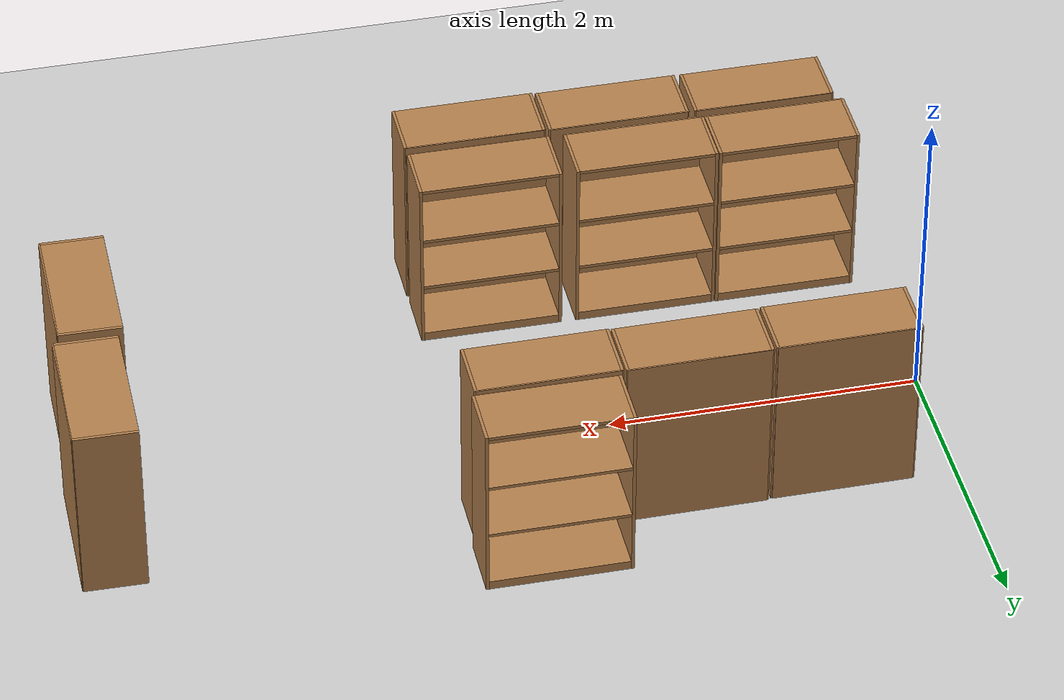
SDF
<sdf version="1.7">
 <world name="default">
  <model name="ground_plane">
   <static>1</static>
   <link name="link">
    <collision name="collision">
     <geometry><plane><normal>0 0 1</normal><size>100 100</size></plane></geometry>
     <surface>
      <contact><collide_bitmask>65535</collide_bitmask></contact>
      <friction><ode><mu>100</mu><mu2>50</mu2></ode></friction>
     </surface>
    </collision>
    <visual name="visual">
     <cast_shadows>0</cast_shadows>
     <geometry><plane><normal>0 0 1</normal><size>100 100</size></plane></geometry>
     <material>
      <script><uri>file://media/materials/scripts/gazebo.material</uri><name>Gazebo/Grey</name></script>
     </material>
    </visual>
   </link>
  </model>
  <model name="bookshelf_2">
   <static>1</static>
   <link name="link">
    <inertial><mass>1</mass></inertial>
    <collision name="back">
     <pose>0 0.005 0.6 0 -0 0</pose>
     <geometry><box><size>0.9 0.01 1.2</size></box></geometry>
    </collision>
    <visual name="visual1">
     <pose>0 0.005 0.6 0 -0 0</pose>
     <geometry><box><size>0.9 0.01 1.2</size></box></geometry>
     <material>
      <script><uri>file://media/materials/scripts/gazebo.material</uri><name>Gazebo/Wood</name></script>
     </material>
    </visual>
    <collision name="left_side">
     <pose>0.45 -0.195 0.6 0 -0 0</pose>
     <geometry><box><size>0.02 0.4 1.2</size></box></geometry>
    </collision>
    <visual name="visual2">
     <pose>0.45 -0.195 0.6 0 -0 0</pose>
     <geometry><box><size>0.02 0.4 1.2</size></box></geometry>
     <material>
      <script><uri>file://media/materials/scripts/gazebo.material</uri><name>Gazebo/Wood</name></script>
     </material>
    </visual>
    <collision name="right_side">
     <pose>-0.45 -0.195 0.6 0 -0 0</pose>
     <geometry><box><size>0.02 0.4 1.2</size></box></geometry>
    </collision>
    <visual name="visual3">
     <pose>-0.45 -0.195 0.6 0 -0 0</pose>
     <geometry><box><size>0.02 0.4 1.2</size></box></geometry>
     <material>
      <script><uri>file://media/materials/scripts/gazebo.material</uri><name>Gazebo/Wood</name></script>
     </material>
    </visual>
    <collision name="bottom">
     <pose>0 -0.195 0.03 0 -0 0</pose>
     <geometry><box><size>0.88 0.4 0.06</size></box></geometry>
    </collision>
    <visual name="visual4">
     <pose>0 -0.195 0.03 0 -0 0</pose>
     <geometry><box><size>0.88 0.4 0.06</size></box></geometry>
     <material>
      <script><uri>file://media/materials/scripts/gazebo.material</uri><name>Gazebo/Wood</name></script>
     </material>
    </visual>
    <collision name="top">
     <pose>0 -0.195 1.19 0 -0 0</pose>
     <geometry><box><size>0.88 0.4 0.02</size></box></geometry>
    </collision>
    <visual name="visual5">
     <pose>0 -0.195 1.19 0 -0 0</pose>
     <geometry><box><size>0.88 0.4 0.02</size></box></geometry>
     <material>
      <script><uri>file://media/materials/scripts/gazebo.material</uri><name>Gazebo/Wood</name></script>
     </material>
    </visual>
    <collision name="low_shelf">
     <pose>0 -0.195 0.43 0 -0 0</pose>
     <geometry><box><size>0.88 0.4 0.02</size></box></geometry>
    </collision>
    <visual name="visual6">
     <pose>0 -0.195 0.43 0 -0 0</pose>
     <geometry><box><size>0.88 0.4 0.02</size></box></geometry>
     <material>
      <script><uri>file://media/materials/scripts/gazebo.material</uri><name>Gazebo/Wood</name></script>
     </material>
    </visual>
    <collision name="high_shelf">
     <pose>0 -0.195 0.8 0 -0 0</pose>
     <geometry><box><size>0.88 0.4 0.02</size></box></geometry>
    </collision>
    <visual name="visual7">
     <pose>0 -0.195 0.8 0 -0 0</pose>
     <geometry><box><size>0.88 0.4 0.02</size></box></geometry>
     <material>
      <script><uri>file://media/materials/scripts/gazebo.material</uri><name>Gazebo/Wood</name></script>
     </material>
    </visual>
   </link>
   <pose>2.61434 0.940511 0 0 -0 3.13622</pose>
  </model>
  <model name="bookshelf_clone">
   <static>1</static>
   <link name="link">
    <inertial><mass>1</mass></inertial>
    <collision name="back">
     <pose>0 0.005 0.6 0 -0 0</pose>
     <geometry><box><size>0.9 0.01 1.2</size></box></geometry>
    </collision>
    <visual name="visual1">
     <pose>0 0.005 0.6 0 -0 0</pose>
     <geometry><box><size>0.9 0.01 1.2</size></box></geometry>
     <material>
      <script><uri>file://media/materials/scripts/gazebo.material</uri><name>Gazebo/Wood</name></script>
     </material>
    </visual>
    <collision name="left_side">
     <pose>0.45 -0.195 0.6 0 -0 0</pose>
     <geometry><box><size>0.02 0.4 1.2</size></box></geometry>
    </collision>
    <visual name="visual2">
     <pose>0.45 -0.195 0.6 0 -0 0</pose>
     <geometry><box><size>0.02 0.4 1.2</size></box></geometry>
     <material>
      <script><uri>file://media/materials/scripts/gazebo.material</uri><name>Gazebo/Wood</name></script>
     </material>
    </visual>
    <collision name="right_side">
     <pose>-0.45 -0.195 0.6 0 -0 0</pose>
     <geometry><box><size>0.02 0.4 1.2</size></box></geometry>
    </collision>
    <visual name="visual3">
     <pose>-0.45 -0.195 0.6 0 -0 0</pose>
     <geometry><box><size>0.02 0.4 1.2</size></box></geometry>
     <material>
      <script><uri>file://media/materials/scripts/gazebo.material</uri><name>Gazebo/Wood</name></script>
     </material>
    </visual>
    <collision name="bottom">
     <pose>0 -0.195 0.03 0 -0 0</pose>
     <geometry><box><size>0.88 0.4 0.06</size></box></geometry>
    </collision>
    <visual name="visual4">
     <pose>0 -0.195 0.03 0 -0 0</pose>
     <geometry><box><size>0.88 0.4 0.06</size></box></geometry>
     <material>
      <script><uri>file://media/materials/scripts/gazebo.material</uri><name>Gazebo/Wood</name></script>
     </material>
    </visual>
    <collision name="top">
     <pose>0 -0.195 1.19 0 -0 0</pose>
     <geometry><box><size>0.88 0.4 0.02</size></box></geometry>
    </collision>
    <visual name="visual5">
     <pose>0 -0.195 1.19 0 -0 0</pose>
     <geometry><box><size>0.88 0.4 0.02</size></box></geometry>
     <material>
      <script><uri>file://media/materials/scripts/gazebo.material</uri><name>Gazebo/Wood</name></script>
     </material>
    </visual>
    <collision name="low_shelf">
     <pose>0 -0.195 0.43 0 -0 0</pose>
     <geometry><box><size>0.88 0.4 0.02</size></box></geometry>
    </collision>
    <visual name="visual6">
     <pose>0 -0.195 0.43 0 -0 0</pose>
     <geometry><box><size>0.88 0.4 0.02</size></box></geometry>
     <material>
      <script><uri>file://media/materials/scripts/gazebo.material</uri><name>Gazebo/Wood</name></script>
     </material>
    </visual>
    <collision name="high_shelf">
     <pose>0 -0.195 0.8 0 -0 0</pose>
     <geometry><box><size>0.88 0.4 0.02</size></box></geometry>
    </collision>
    <visual name="visual7">
     <pose>0 -0.195 0.8 0 -0 0</pose>
     <geometry><box><size>0.88 0.4 0.02</size></box></geometry>
     <material>
      <script><uri>file://media/materials/scripts/gazebo.material</uri><name>Gazebo/Wood</name></script>
     </material>
    </visual>
   </link>
   <pose>2.59058 0.88967 0 0 -0 0</pose>
  </model>
  <model name="bookshelf_clone_clone">
   <static>1</static>
   <link name="link">
    <inertial><mass>1</mass></inertial>
    <collision name="back">
     <pose>0 0.005 0.6 0 -0 0</pose>
     <geometry><box><size>0.9 0.01 1.2</size></box></geometry>
    </collision>
    <visual name="visual1">
     <pose>0 0.005 0.6 0 -0 0</pose>
     <geometry><box><size>0.9 0.01 1.2</size></box></geometry>
     <material>
      <script><uri>file://media/materials/scripts/gazebo.material</uri><name>Gazebo/Wood</name></script>
     </material>
    </visual>
    <collision name="left_side">
     <pose>0.45 -0.195 0.6 0 -0 0</pose>
     <geometry><box><size>0.02 0.4 1.2</size></box></geometry>
    </collision>
    <visual name="visual2">
     <pose>0.45 -0.195 0.6 0 -0 0</pose>
     <geometry><box><size>0.02 0.4 1.2</size></box></geometry>
     <material>
      <script><uri>file://media/materials/scripts/gazebo.material</uri><name>Gazebo/Wood</name></script>
     </material>
    </visual>
    <collision name="right_side">
     <pose>-0.45 -0.195 0.6 0 -0 0</pose>
     <geometry><box><size>0.02 0.4 1.2</size></box></geometry>
    </collision>
    <visual name="visual3">
     <pose>-0.45 -0.195 0.6 0 -0 0</pose>
     <geometry><box><size>0.02 0.4 1.2</size></box></geometry>
     <material>
      <script><uri>file://media/materials/scripts/gazebo.material</uri><name>Gazebo/Wood</name></script>
     </material>
    </visual>
    <collision name="bottom">
     <pose>0 -0.195 0.03 0 -0 0</pose>
     <geometry><box><size>0.88 0.4 0.06</size></box></geometry>
    </collision>
    <visual name="visual4">
     <pose>0 -0.195 0.03 0 -0 0</pose>
     <geometry><box><size>0.88 0.4 0.06</size></box></geometry>
     <material>
      <script><uri>file://media/materials/scripts/gazebo.material</uri><name>Gazebo/Wood</name></script>
     </material>
    </visual>
    <collision name="top">
     <pose>0 -0.195 1.19 0 -0 0</pose>
     <geometry><box><size>0.88 0.4 0.02</size></box></geometry>
    </collision>
    <visual name="visual5">
     <pose>0 -0.195 1.19 0 -0 0</pose>
     <geometry><box><size>0.88 0.4 0.02</size></box></geometry>
     <material>
      <script><uri>file://media/materials/scripts/gazebo.material</uri><name>Gazebo/Wood</name></script>
     </material>
    </visual>
    <collision name="low_shelf">
     <pose>0 -0.195 0.43 0 -0 0</pose>
     <geometry><box><size>0.88 0.4 0.02</size></box></geometry>
    </collision>
    <visual name="visual6">
     <pose>0 -0.195 0.43 0 -0 0</pose>
     <geometry><box><size>0.88 0.4 0.02</size></box></geometry>
     <material>
      <script><uri>file://media/materials/scripts/gazebo.material</uri><name>Gazebo/Wood</name></script>
     </material>
    </visual>
    <collision name="high_shelf">
     <pose>0 -0.195 0.8 0 -0 0</pose>
     <geometry><box><size>0.88 0.4 0.02</size></box></geometry>
    </collision>
    <visual name="visual7">
     <pose>0 -0.195 0.8 0 -0 0</pose>
     <geometry><box><size>0.88 0.4 0.02</size></box></geometry>
     <material>
      <script><uri>file://media/materials/scripts/gazebo.material</uri><name>Gazebo/Wood</name></script>
     </material>
    </visual>
   </link>
   <pose>1.6608 0.896396 0 0 -0 0</pose>
  </model>
  <model name="bookshelf_clone_clone_clone">
   <static>1</static>
   <link name="link">
    <inertial><mass>1</mass></inertial>
    <collision name="back">
     <pose>0 0.005 0.6 0 -0 0</pose>
     <geometry><box><size>0.9 0.01 1.2</size></box></geometry>
    </collision>
    <visual name="visual1">
     <pose>0 0.005 0.6 0 -0 0</pose>
     <geometry><box><size>0.9 0.01 1.2</size></box></geometry>
     <material>
      <script><uri>file://media/materials/scripts/gazebo.material</uri><name>Gazebo/Wood</name></script>
     </material>
    </visual>
    <collision name="left_side">
     <pose>0.45 -0.195 0.6 0 -0 0</pose>
     <geometry><box><size>0.02 0.4 1.2</size></box></geometry>
    </collision>
    <visual name="visual2">
     <pose>0.45 -0.195 0.6 0 -0 0</pose>
     <geometry><box><size>0.02 0.4 1.2</size></box></geometry>
     <material>
      <script><uri>file://media/materials/scripts/gazebo.material</uri><name>Gazebo/Wood</name></script>
     </material>
    </visual>
    <collision name="right_side">
     <pose>-0.45 -0.195 0.6 0 -0 0</pose>
     <geometry><box><size>0.02 0.4 1.2</size></box></geometry>
    </collision>
    <visual name="visual3">
     <pose>-0.45 -0.195 0.6 0 -0 0</pose>
     <geometry><box><size>0.02 0.4 1.2</size></box></geometry>
     <material>
      <script><uri>file://media/materials/scripts/gazebo.material</uri><name>Gazebo/Wood</name></script>
     </material>
    </visual>
    <collision name="bottom">
     <pose>0 -0.195 0.03 0 -0 0</pose>
     <geometry><box><size>0.88 0.4 0.06</size></box></geometry>
    </collision>
    <visual name="visual4">
     <pose>0 -0.195 0.03 0 -0 0</pose>
     <geometry><box><size>0.88 0.4 0.06</size></box></geometry>
     <material>
      <script><uri>file://media/materials/scripts/gazebo.material</uri><name>Gazebo/Wood</name></script>
     </material>
    </visual>
    <collision name="top">
     <pose>0 -0.195 1.19 0 -0 0</pose>
     <geometry><box><size>0.88 0.4 0.02</size></box></geometry>
    </collision>
    <visual name="visual5">
     <pose>0 -0.195 1.19 0 -0 0</pose>
     <geometry><box><size>0.88 0.4 0.02</size></box></geometry>
     <material>
      <script><uri>file://media/materials/scripts/gazebo.material</uri><name>Gazebo/Wood</name></script>
     </material>
    </visual>
    <collision name="low_shelf">
     <pose>0 -0.195 0.43 0 -0 0</pose>
     <geometry><box><size>0.88 0.4 0.02</size></box></geometry>
    </collision>
    <visual name="visual6">
     <pose>0 -0.195 0.43 0 -0 0</pose>
     <geometry><box><size>0.88 0.4 0.02</size></box></geometry>
     <material>
      <script><uri>file://media/materials/scripts/gazebo.material</uri><name>Gazebo/Wood</name></script>
     </material>
    </visual>
    <collision name="high_shelf">
     <pose>0 -0.195 0.8 0 -0 0</pose>
     <geometry><box><size>0.88 0.4 0.02</size></box></geometry>
    </collision>
    <visual name="visual7">
     <pose>0 -0.195 0.8 0 -0 0</pose>
     <geometry><box><size>0.88 0.4 0.02</size></box></geometry>
     <material>
      <script><uri>file://media/materials/scripts/gazebo.material</uri><name>Gazebo/Wood</name></script>
     </material>
    </visual>
   </link>
   <pose>0.72663 0.888413 0 0 -0 0</pose>
  </model>
  <model name="bookshelf_2_clone_1">
   <static>1</static>
   <link name="link">
    <inertial><mass>1</mass></inertial>
    <collision name="back">
     <pose>0 0.005 0.6 0 -0 0</pose>
     <geometry><box><size>0.9 0.01 1.2</size></box></geometry>
    </collision>
    <visual name="visual1">
     <pose>0 0.005 0.6 0 -0 0</pose>
     <geometry><box><size>0.9 0.01 1.2</size></box></geometry>
     <material>
      <script><uri>file://media/materials/scripts/gazebo.material</uri><name>Gazebo/Wood</name></script>
     </material>
    </visual>
    <collision name="left_side">
     <pose>0.45 -0.195 0.6 0 -0 0</pose>
     <geometry><box><size>0.02 0.4 1.2</size></box></geometry>
    </collision>
    <visual name="visual2">
     <pose>0.45 -0.195 0.6 0 -0 0</pose>
     <geometry><box><size>0.02 0.4 1.2</size></box></geometry>
     <material>
      <script><uri>file://media/materials/scripts/gazebo.material</uri><name>Gazebo/Wood</name></script>
     </material>
    </visual>
    <collision name="right_side">
     <pose>-0.45 -0.195 0.6 0 -0 0</pose>
     <geometry><box><size>0.02 0.4 1.2</size></box></geometry>
    </collision>
    <visual name="visual3">
     <pose>-0.45 -0.195 0.6 0 -0 0</pose>
     <geometry><box><size>0.02 0.4 1.2</size></box></geometry>
     <material>
      <script><uri>file://media/materials/scripts/gazebo.material</uri><name>Gazebo/Wood</name></script>
     </material>
    </visual>
    <collision name="bottom">
     <pose>0 -0.195 0.03 0 -0 0</pose>
     <geometry><box><size>0.88 0.4 0.06</size></box></geometry>
    </collision>
    <visual name="visual4">
     <pose>0 -0.195 0.03 0 -0 0</pose>
     <geometry><box><size>0.88 0.4 0.06</size></box></geometry>
     <material>
      <script><uri>file://media/materials/scripts/gazebo.material</uri><name>Gazebo/Wood</name></script>
     </material>
    </visual>
    <collision name="top">
     <pose>0 -0.195 1.19 0 -0 0</pose>
     <geometry><box><size>0.88 0.4 0.02</size></box></geometry>
    </collision>
    <visual name="visual5">
     <pose>0 -0.195 1.19 0 -0 0</pose>
     <geometry><box><size>0.88 0.4 0.02</size></box></geometry>
     <material>
      <script><uri>file://media/materials/scripts/gazebo.material</uri><name>Gazebo/Wood</name></script>
     </material>
    </visual>
    <collision name="low_shelf">
     <pose>0 -0.195 0.43 0 -0 0</pose>
     <geometry><box><size>0.88 0.4 0.02</size></box></geometry>
    </collision>
    <visual name="visual6">
     <pose>0 -0.195 0.43 0 -0 0</pose>
     <geometry><box><size>0.88 0.4 0.02</size></box></geometry>
     <material>
      <script><uri>file://media/materials/scripts/gazebo.material</uri><name>Gazebo/Wood</name></script>
     </material>
    </visual>
    <collision name="high_shelf">
     <pose>0 -0.195 0.8 0 -0 0</pose>
     <geometry><box><size>0.88 0.4 0.02</size></box></geometry>
    </collision>
    <visual name="visual7">
     <pose>0 -0.195 0.8 0 -0 0</pose>
     <geometry><box><size>0.88 0.4 0.02</size></box></geometry>
     <material>
      <script><uri>file://media/materials/scripts/gazebo.material</uri><name>Gazebo/Wood</name></script>
     </material>
    </visual>
   </link>
   <pose>2.51878 -1.46416 0 0 -0 3.13622</pose>
  </model>
  <model name="bookshelf_2_clone_2">
   <static>1</static>
   <link name="link">
    <inertial><mass>1</mass></inertial>
    <collision name="back">
     <pose>0 0.005 0.6 0 -0 0</pose>
     <geometry><box><size>0.9 0.01 1.2</size></box></geometry>
    </collision>
    <visual name="visual1">
     <pose>0 0.005 0.6 0 -0 0</pose>
     <geometry><box><size>0.9 0.01 1.2</size></box></geometry>
     <material>
      <script><uri>file://media/materials/scripts/gazebo.material</uri><name>Gazebo/Wood</name></script>
     </material>
    </visual>
    <collision name="left_side">
     <pose>0.45 -0.195 0.6 0 -0 0</pose>
     <geometry><box><size>0.02 0.4 1.2</size></box></geometry>
    </collision>
    <visual name="visual2">
     <pose>0.45 -0.195 0.6 0 -0 0</pose>
     <geometry><box><size>0.02 0.4 1.2</size></box></geometry>
     <material>
      <script><uri>file://media/materials/scripts/gazebo.material</uri><name>Gazebo/Wood</name></script>
     </material>
    </visual>
    <collision name="right_side">
     <pose>-0.45 -0.195 0.6 0 -0 0</pose>
     <geometry><box><size>0.02 0.4 1.2</size></box></geometry>
    </collision>
    <visual name="visual3">
     <pose>-0.45 -0.195 0.6 0 -0 0</pose>
     <geometry><box><size>0.02 0.4 1.2</size></box></geometry>
     <material>
      <script><uri>file://media/materials/scripts/gazebo.material</uri><name>Gazebo/Wood</name></script>
     </material>
    </visual>
    <collision name="bottom">
     <pose>0 -0.195 0.03 0 -0 0</pose>
     <geometry><box><size>0.88 0.4 0.06</size></box></geometry>
    </collision>
    <visual name="visual4">
     <pose>0 -0.195 0.03 0 -0 0</pose>
     <geometry><box><size>0.88 0.4 0.06</size></box></geometry>
     <material>
      <script><uri>file://media/materials/scripts/gazebo.material</uri><name>Gazebo/Wood</name></script>
     </material>
    </visual>
    <collision name="top">
     <pose>0 -0.195 1.19 0 -0 0</pose>
     <geometry><box><size>0.88 0.4 0.02</size></box></geometry>
    </collision>
    <visual name="visual5">
     <pose>0 -0.195 1.19 0 -0 0</pose>
     <geometry><box><size>0.88 0.4 0.02</size></box></geometry>
     <material>
      <script><uri>file://media/materials/scripts/gazebo.material</uri><name>Gazebo/Wood</name></script>
     </material>
    </visual>
    <collision name="low_shelf">
     <pose>0 -0.195 0.43 0 -0 0</pose>
     <geometry><box><size>0.88 0.4 0.02</size></box></geometry>
    </collision>
    <visual name="visual6">
     <pose>0 -0.195 0.43 0 -0 0</pose>
     <geometry><box><size>0.88 0.4 0.02</size></box></geometry>
     <material>
      <script><uri>file://media/materials/scripts/gazebo.material</uri><name>Gazebo/Wood</name></script>
     </material>
    </visual>
    <collision name="high_shelf">
     <pose>0 -0.195 0.8 0 -0 0</pose>
     <geometry><box><size>0.88 0.4 0.02</size></box></geometry>
    </collision>
    <visual name="visual7">
     <pose>0 -0.195 0.8 0 -0 0</pose>
     <geometry><box><size>0.88 0.4 0.02</size></box></geometry>
     <material>
      <script><uri>file://media/materials/scripts/gazebo.material</uri><name>Gazebo/Wood</name></script>
     </material>
    </visual>
   </link>
   <pose>1.50781 -1.45641 0 0 -0 3.13622</pose>
  </model>
  <model name="bookshelf_2_clone_3">
   <static>1</static>
   <link name="link">
    <inertial><mass>1</mass></inertial>
    <collision name="back">
     <pose>0 0.005 0.6 0 -0 0</pose>
     <geometry><box><size>0.9 0.01 1.2</size></box></geometry>
    </collision>
    <visual name="visual1">
     <pose>0 0.005 0.6 0 -0 0</pose>
     <geometry><box><size>0.9 0.01 1.2</size></box></geometry>
     <material>
      <script><uri>file://media/materials/scripts/gazebo.material</uri><name>Gazebo/Wood</name></script>
     </material>
    </visual>
    <collision name="left_side">
     <pose>0.45 -0.195 0.6 0 -0 0</pose>
     <geometry><box><size>0.02 0.4 1.2</size></box></geometry>
    </collision>
    <visual name="visual2">
     <pose>0.45 -0.195 0.6 0 -0 0</pose>
     <geometry><box><size>0.02 0.4 1.2</size></box></geometry>
     <material>
      <script><uri>file://media/materials/scripts/gazebo.material</uri><name>Gazebo/Wood</name></script>
     </material>
    </visual>
    <collision name="right_side">
     <pose>-0.45 -0.195 0.6 0 -0 0</pose>
     <geometry><box><size>0.02 0.4 1.2</size></box></geometry>
    </collision>
    <visual name="visual3">
     <pose>-0.45 -0.195 0.6 0 -0 0</pose>
     <geometry><box><size>0.02 0.4 1.2</size></box></geometry>
     <material>
      <script><uri>file://media/materials/scripts/gazebo.material</uri><name>Gazebo/Wood</name></script>
     </material>
    </visual>
    <collision name="bottom">
     <pose>0 -0.195 0.03 0 -0 0</pose>
     <geometry><box><size>0.88 0.4 0.06</size></box></geometry>
    </collision>
    <visual name="visual4">
     <pose>0 -0.195 0.03 0 -0 0</pose>
     <geometry><box><size>0.88 0.4 0.06</size></box></geometry>
     <material>
      <script><uri>file://media/materials/scripts/gazebo.material</uri><name>Gazebo/Wood</name></script>
     </material>
    </visual>
    <collision name="top">
     <pose>0 -0.195 1.19 0 -0 0</pose>
     <geometry><box><size>0.88 0.4 0.02</size></box></geometry>
    </collision>
    <visual name="visual5">
     <pose>0 -0.195 1.19 0 -0 0</pose>
     <geometry><box><size>0.88 0.4 0.02</size></box></geometry>
     <material>
      <script><uri>file://media/materials/scripts/gazebo.material</uri><name>Gazebo/Wood</name></script>
     </material>
    </visual>
    <collision name="low_shelf">
     <pose>0 -0.195 0.43 0 -0 0</pose>
     <geometry><box><size>0.88 0.4 0.02</size></box></geometry>
    </collision>
    <visual name="visual6">
     <pose>0 -0.195 0.43 0 -0 0</pose>
     <geometry><box><size>0.88 0.4 0.02</size></box></geometry>
     <material>
      <script><uri>file://media/materials/scripts/gazebo.material</uri><name>Gazebo/Wood</name></script>
     </material>
    </visual>
    <collision name="high_shelf">
     <pose>0 -0.195 0.8 0 -0 0</pose>
     <geometry><box><size>0.88 0.4 0.02</size></box></geometry>
    </collision>
    <visual name="visual7">
     <pose>0 -0.195 0.8 0 -0 0</pose>
     <geometry><box><size>0.88 0.4 0.02</size></box></geometry>
     <material>
      <script><uri>file://media/materials/scripts/gazebo.material</uri><name>Gazebo/Wood</name></script>
     </material>
    </visual>
   </link>
   <pose>0.583819 -1.44906 0 0 -0 3.13622</pose>
  </model>
  <model name="bookshelf_clone_clone_0">
   <static>1</static>
   <link name="link">
    <inertial><mass>1</mass></inertial>
    <collision name="back">
     <pose>0 0.005 0.6 0 -0 0</pose>
     <geometry><box><size>0.9 0.01 1.2</size></box></geometry>
    </collision>
    <visual name="visual1">
     <pose>0 0.005 0.6 0 -0 0</pose>
     <geometry><box><size>0.9 0.01 1.2</size></box></geometry>
     <material>
      <script><uri>file://media/materials/scripts/gazebo.material</uri><name>Gazebo/Wood</name></script>
     </material>
    </visual>
    <collision name="left_side">
     <pose>0.45 -0.195 0.6 0 -0 0</pose>
     <geometry><box><size>0.02 0.4 1.2</size></box></geometry>
    </collision>
    <visual name="visual2">
     <pose>0.45 -0.195 0.6 0 -0 0</pose>
     <geometry><box><size>0.02 0.4 1.2</size></box></geometry>
     <material>
      <script><uri>file://media/materials/scripts/gazebo.material</uri><name>Gazebo/Wood</name></script>
     </material>
    </visual>
    <collision name="right_side">
     <pose>-0.45 -0.195 0.6 0 -0 0</pose>
     <geometry><box><size>0.02 0.4 1.2</size></box></geometry>
    </collision>
    <visual name="visual3">
     <pose>-0.45 -0.195 0.6 0 -0 0</pose>
     <geometry><box><size>0.02 0.4 1.2</size></box></geometry>
     <material>
      <script><uri>file://media/materials/scripts/gazebo.material</uri><name>Gazebo/Wood</name></script>
     </material>
    </visual>
    <collision name="bottom">
     <pose>0 -0.195 0.03 0 -0 0</pose>
     <geometry><box><size>0.88 0.4 0.06</size></box></geometry>
    </collision>
    <visual name="visual4">
     <pose>0 -0.195 0.03 0 -0 0</pose>
     <geometry><box><size>0.88 0.4 0.06</size></box></geometry>
     <material>
      <script><uri>file://media/materials/scripts/gazebo.material</uri><name>Gazebo/Wood</name></script>
     </material>
    </visual>
    <collision name="top">
     <pose>0 -0.195 1.19 0 -0 0</pose>
     <geometry><box><size>0.88 0.4 0.02</size></box></geometry>
    </collision>
    <visual name="visual5">
     <pose>0 -0.195 1.19 0 -0 0</pose>
     <geometry><box><size>0.88 0.4 0.02</size></box></geometry>
     <material>
      <script><uri>file://media/materials/scripts/gazebo.material</uri><name>Gazebo/Wood</name></script>
     </material>
    </visual>
    <collision name="low_shelf">
     <pose>0 -0.195 0.43 0 -0 0</pose>
     <geometry><box><size>0.88 0.4 0.02</size></box></geometry>
    </collision>
    <visual name="visual6">
     <pose>0 -0.195 0.43 0 -0 0</pose>
     <geometry><box><size>0.88 0.4 0.02</size></box></geometry>
     <material>
      <script><uri>file://media/materials/scripts/gazebo.material</uri><name>Gazebo/Wood</name></script>
     </material>
    </visual>
    <collision name="high_shelf">
     <pose>0 -0.195 0.8 0 -0 0</pose>
     <geometry><box><size>0.88 0.4 0.02</size></box></geometry>
    </collision>
    <visual name="visual7">
     <pose>0 -0.195 0.8 0 -0 0</pose>
     <geometry><box><size>0.88 0.4 0.02</size></box></geometry>
     <material>
      <script><uri>file://media/materials/scripts/gazebo.material</uri><name>Gazebo/Wood</name></script>
     </material>
    </visual>
   </link>
   <pose>2.52478 -1.54537 0 0 -0 0</pose>
  </model>
  <model name="bookshelf_clone_clone_clone_0">
   <static>1</static>
   <link name="link">
    <inertial><mass>1</mass></inertial>
    <collision name="back">
     <pose>0 0.005 0.6 0 -0 0</pose>
     <geometry><box><size>0.9 0.01 1.2</size></box></geometry>
    </collision>
    <visual name="visual1">
     <pose>0 0.005 0.6 0 -0 0</pose>
     <geometry><box><size>0.9 0.01 1.2</size></box></geometry>
     <material>
      <script><uri>file://media/materials/scripts/gazebo.material</uri><name>Gazebo/Wood</name></script>
     </material>
    </visual>
    <collision name="left_side">
     <pose>0.45 -0.195 0.6 0 -0 0</pose>
     <geometry><box><size>0.02 0.4 1.2</size></box></geometry>
    </collision>
    <visual name="visual2">
     <pose>0.45 -0.195 0.6 0 -0 0</pose>
     <geometry><box><size>0.02 0.4 1.2</size></box></geometry>
     <material>
      <script><uri>file://media/materials/scripts/gazebo.material</uri><name>Gazebo/Wood</name></script>
     </material>
    </visual>
    <collision name="right_side">
     <pose>-0.45 -0.195 0.6 0 -0 0</pose>
     <geometry><box><size>0.02 0.4 1.2</size></box></geometry>
    </collision>
    <visual name="visual3">
     <pose>-0.45 -0.195 0.6 0 -0 0</pose>
     <geometry><box><size>0.02 0.4 1.2</size></box></geometry>
     <material>
      <script><uri>file://media/materials/scripts/gazebo.material</uri><name>Gazebo/Wood</name></script>
     </material>
    </visual>
    <collision name="bottom">
     <pose>0 -0.195 0.03 0 -0 0</pose>
     <geometry><box><size>0.88 0.4 0.06</size></box></geometry>
    </collision>
    <visual name="visual4">
     <pose>0 -0.195 0.03 0 -0 0</pose>
     <geometry><box><size>0.88 0.4 0.06</size></box></geometry>
     <material>
      <script><uri>file://media/materials/scripts/gazebo.material</uri><name>Gazebo/Wood</name></script>
     </material>
    </visual>
    <collision name="top">
     <pose>0 -0.195 1.19 0 -0 0</pose>
     <geometry><box><size>0.88 0.4 0.02</size></box></geometry>
    </collision>
    <visual name="visual5">
     <pose>0 -0.195 1.19 0 -0 0</pose>
     <geometry><box><size>0.88 0.4 0.02</size></box></geometry>
     <material>
      <script><uri>file://media/materials/scripts/gazebo.material</uri><name>Gazebo/Wood</name></script>
     </material>
    </visual>
    <collision name="low_shelf">
     <pose>0 -0.195 0.43 0 -0 0</pose>
     <geometry><box><size>0.88 0.4 0.02</size></box></geometry>
    </collision>
    <visual name="visual6">
     <pose>0 -0.195 0.43 0 -0 0</pose>
     <geometry><box><size>0.88 0.4 0.02</size></box></geometry>
     <material>
      <script><uri>file://media/materials/scripts/gazebo.material</uri><name>Gazebo/Wood</name></script>
     </material>
    </visual>
    <collision name="high_shelf">
     <pose>0 -0.195 0.8 0 -0 0</pose>
     <geometry><box><size>0.88 0.4 0.02</size></box></geometry>
    </collision>
    <visual name="visual7">
     <pose>0 -0.195 0.8 0 -0 0</pose>
     <geometry><box><size>0.88 0.4 0.02</size></box></geometry>
     <material>
      <script><uri>file://media/materials/scripts/gazebo.material</uri><name>Gazebo/Wood</name></script>
     </material>
    </visual>
   </link>
   <pose>1.58569 -1.53588 0 0 -0 0</pose>
  </model>
  <model name="bookshelf_clone_clone_clone_1">
   <static>1</static>
   <link name="link">
    <inertial><mass>1</mass></inertial>
    <collision name="back">
     <pose>0 0.005 0.6 0 -0 0</pose>
     <geometry><box><size>0.9 0.01 1.2</size></box></geometry>
    </collision>
    <visual name="visual1">
     <pose>0 0.005 0.6 0 -0 0</pose>
     <geometry><box><size>0.9 0.01 1.2</size></box></geometry>
     <material>
      <script><uri>file://media/materials/scripts/gazebo.material</uri><name>Gazebo/Wood</name></script>
     </material>
    </visual>
    <collision name="left_side">
     <pose>0.45 -0.195 0.6 0 -0 0</pose>
     <geometry><box><size>0.02 0.4 1.2</size></box></geometry>
    </collision>
    <visual name="visual2">
     <pose>0.45 -0.195 0.6 0 -0 0</pose>
     <geometry><box><size>0.02 0.4 1.2</size></box></geometry>
     <material>
      <script><uri>file://media/materials/scripts/gazebo.material</uri><name>Gazebo/Wood</name></script>
     </material>
    </visual>
    <collision name="right_side">
     <pose>-0.45 -0.195 0.6 0 -0 0</pose>
     <geometry><box><size>0.02 0.4 1.2</size></box></geometry>
    </collision>
    <visual name="visual3">
     <pose>-0.45 -0.195 0.6 0 -0 0</pose>
     <geometry><box><size>0.02 0.4 1.2</size></box></geometry>
     <material>
      <script><uri>file://media/materials/scripts/gazebo.material</uri><name>Gazebo/Wood</name></script>
     </material>
    </visual>
    <collision name="bottom">
     <pose>0 -0.195 0.03 0 -0 0</pose>
     <geometry><box><size>0.88 0.4 0.06</size></box></geometry>
    </collision>
    <visual name="visual4">
     <pose>0 -0.195 0.03 0 -0 0</pose>
     <geometry><box><size>0.88 0.4 0.06</size></box></geometry>
     <material>
      <script><uri>file://media/materials/scripts/gazebo.material</uri><name>Gazebo/Wood</name></script>
     </material>
    </visual>
    <collision name="top">
     <pose>0 -0.195 1.19 0 -0 0</pose>
     <geometry><box><size>0.88 0.4 0.02</size></box></geometry>
    </collision>
    <visual name="visual5">
     <pose>0 -0.195 1.19 0 -0 0</pose>
     <geometry><box><size>0.88 0.4 0.02</size></box></geometry>
     <material>
      <script><uri>file://media/materials/scripts/gazebo.material</uri><name>Gazebo/Wood</name></script>
     </material>
    </visual>
    <collision name="low_shelf">
     <pose>0 -0.195 0.43 0 -0 0</pose>
     <geometry><box><size>0.88 0.4 0.02</size></box></geometry>
    </collision>
    <visual name="visual6">
     <pose>0 -0.195 0.43 0 -0 0</pose>
     <geometry><box><size>0.88 0.4 0.02</size></box></geometry>
     <material>
      <script><uri>file://media/materials/scripts/gazebo.material</uri><name>Gazebo/Wood</name></script>
     </material>
    </visual>
    <collision name="high_shelf">
     <pose>0 -0.195 0.8 0 -0 0</pose>
     <geometry><box><size>0.88 0.4 0.02</size></box></geometry>
    </collision>
    <visual name="visual7">
     <pose>0 -0.195 0.8 0 -0 0</pose>
     <geometry><box><size>0.88 0.4 0.02</size></box></geometry>
     <material>
      <script><uri>file://media/materials/scripts/gazebo.material</uri><name>Gazebo/Wood</name></script>
     </material>
    </visual>
   </link>
   <pose>0.631032 -1.53298 0 0 -0 0</pose>
  </model>
  <model name="bookshelf_3_clone_1">
   <static>1</static>
   <link name="link">
    <inertial><mass>1</mass></inertial>
    <collision name="back">
     <pose>0 0.005 0.6 0 -0 0</pose>
     <geometry><box><size>0.9 0.01 1.2</size></box></geometry>
    </collision>
    <visual name="visual1">
     <pose>0 0.005 0.6 0 -0 0</pose>
     <geometry><box><size>0.9 0.01 1.2</size></box></geometry>
     <material>
      <script><uri>file://media/materials/scripts/gazebo.material</uri><name>Gazebo/Wood</name></script>
     </material>
    </visual>
    <collision name="left_side">
     <pose>0.45 -0.195 0.6 0 -0 0</pose>
     <geometry><box><size>0.02 0.4 1.2</size></box></geometry>
    </collision>
    <visual name="visual2">
     <pose>0.45 -0.195 0.6 0 -0 0</pose>
     <geometry><box><size>0.02 0.4 1.2</size></box></geometry>
     <material>
      <script><uri>file://media/materials/scripts/gazebo.material</uri><name>Gazebo/Wood</name></script>
     </material>
    </visual>
    <collision name="right_side">
     <pose>-0.45 -0.195 0.6 0 -0 0</pose>
     <geometry><box><size>0.02 0.4 1.2</size></box></geometry>
    </collision>
    <visual name="visual3">
     <pose>-0.45 -0.195 0.6 0 -0 0</pose>
     <geometry><box><size>0.02 0.4 1.2</size></box></geometry>
     <material>
      <script><uri>file://media/materials/scripts/gazebo.material</uri><name>Gazebo/Wood</name></script>
     </material>
    </visual>
    <collision name="bottom">
     <pose>0 -0.195 0.03 0 -0 0</pose>
     <geometry><box><size>0.88 0.4 0.06</size></box></geometry>
    </collision>
    <visual name="visual4">
     <pose>0 -0.195 0.03 0 -0 0</pose>
     <geometry><box><size>0.88 0.4 0.06</size></box></geometry>
     <material>
      <script><uri>file://media/materials/scripts/gazebo.material</uri><name>Gazebo/Wood</name></script>
     </material>
    </visual>
    <collision name="top">
     <pose>0 -0.195 1.19 0 -0 0</pose>
     <geometry><box><size>0.88 0.4 0.02</size></box></geometry>
    </collision>
    <visual name="visual5">
     <pose>0 -0.195 1.19 0 -0 0</pose>
     <geometry><box><size>0.88 0.4 0.02</size></box></geometry>
     <material>
      <script><uri>file://media/materials/scripts/gazebo.material</uri><name>Gazebo/Wood</name></script>
     </material>
    </visual>
    <collision name="low_shelf">
     <pose>0 -0.195 0.43 0 -0 0</pose>
     <geometry><box><size>0.88 0.4 0.02</size></box></geometry>
    </collision>
    <visual name="visual6">
     <pose>0 -0.195 0.43 0 -0 0</pose>
     <geometry><box><size>0.88 0.4 0.02</size></box></geometry>
     <material>
      <script><uri>file://media/materials/scripts/gazebo.material</uri><name>Gazebo/Wood</name></script>
     </material>
    </visual>
    <collision name="high_shelf">
     <pose>0 -0.195 0.8 0 -0 0</pose>
     <geometry><box><size>0.88 0.4 0.02</size></box></geometry>
    </collision>
    <visual name="visual7">
     <pose>0 -0.195 0.8 0 -0 0</pose>
     <geometry><box><size>0.88 0.4 0.02</size></box></geometry>
     <material>
      <script><uri>file://media/materials/scripts/gazebo.material</uri><name>Gazebo/Wood</name></script>
     </material>
    </visual>
   </link>
   <pose>5.4398 0.365962 0 0 0 -1.59113</pose>
  </model>
  <model name="bookshelf_3_clone_2">
   <static>1</static>
   <link name="link">
    <inertial><mass>1</mass></inertial>
    <collision name="back">
     <pose>0 0.005 0.6 0 -0 0</pose>
     <geometry><box><size>0.9 0.01 1.2</size></box></geometry>
    </collision>
    <visual name="visual1">
     <pose>0 0.005 0.6 0 -0 0</pose>
     <geometry><box><size>0.9 0.01 1.2</size></box></geometry>
     <material>
      <script><uri>file://media/materials/scripts/gazebo.material</uri><name>Gazebo/Wood</name></script>
     </material>
    </visual>
    <collision name="left_side">
     <pose>0.45 -0.195 0.6 0 -0 0</pose>
     <geometry><box><size>0.02 0.4 1.2</size></box></geometry>
    </collision>
    <visual name="visual2">
     <pose>0.45 -0.195 0.6 0 -0 0</pose>
     <geometry><box><size>0.02 0.4 1.2</size></box></geometry>
     <material>
      <script><uri>file://media/materials/scripts/gazebo.material</uri><name>Gazebo/Wood</name></script>
     </material>
    </visual>
    <collision name="right_side">
     <pose>-0.45 -0.195 0.6 0 -0 0</pose>
     <geometry><box><size>0.02 0.4 1.2</size></box></geometry>
    </collision>
    <visual name="visual3">
     <pose>-0.45 -0.195 0.6 0 -0 0</pose>
     <geometry><box><size>0.02 0.4 1.2</size></box></geometry>
     <material>
      <script><uri>file://media/materials/scripts/gazebo.material</uri><name>Gazebo/Wood</name></script>
     </material>
    </visual>
    <collision name="bottom">
     <pose>0 -0.195 0.03 0 -0 0</pose>
     <geometry><box><size>0.88 0.4 0.06</size></box></geometry>
    </collision>
    <visual name="visual4">
     <pose>0 -0.195 0.03 0 -0 0</pose>
     <geometry><box><size>0.88 0.4 0.06</size></box></geometry>
     <material>
      <script><uri>file://media/materials/scripts/gazebo.material</uri><name>Gazebo/Wood</name></script>
     </material>
    </visual>
    <collision name="top">
     <pose>0 -0.195 1.19 0 -0 0</pose>
     <geometry><box><size>0.88 0.4 0.02</size></box></geometry>
    </collision>
    <visual name="visual5">
     <pose>0 -0.195 1.19 0 -0 0</pose>
     <geometry><box><size>0.88 0.4 0.02</size></box></geometry>
     <material>
      <script><uri>file://media/materials/scripts/gazebo.material</uri><name>Gazebo/Wood</name></script>
     </material>
    </visual>
    <collision name="low_shelf">
     <pose>0 -0.195 0.43 0 -0 0</pose>
     <geometry><box><size>0.88 0.4 0.02</size></box></geometry>
    </collision>
    <visual name="visual6">
     <pose>0 -0.195 0.43 0 -0 0</pose>
     <geometry><box><size>0.88 0.4 0.02</size></box></geometry>
     <material>
      <script><uri>file://media/materials/scripts/gazebo.material</uri><name>Gazebo/Wood</name></script>
     </material>
    </visual>
    <collision name="high_shelf">
     <pose>0 -0.195 0.8 0 -0 0</pose>
     <geometry><box><size>0.88 0.4 0.02</size></box></geometry>
    </collision>
    <visual name="visual7">
     <pose>0 -0.195 0.8 0 -0 0</pose>
     <geometry><box><size>0.88 0.4 0.02</size></box></geometry>
     <material>
      <script><uri>file://media/materials/scripts/gazebo.material</uri><name>Gazebo/Wood</name></script>
     </material>
    </visual>
   </link>
   <pose>5.38212 -0.617937 0 0 0 -1.59113</pose>
  </model>
  <model name="short_cylinder_1">
   <link name="link">
    <inertial>
     <mass>1</mass>
     <inertia><ixx>0.145833</ixx><ixy>0</ixy><ixz>0</ixz><iyy>0.145833</iyy><iyz>0</iyz><izz>0.125</izz></inertia>
    </inertial>
    <visual name="visual">
     <geometry><cylinder><radius>0.15</radius><length>0.2</length></cylinder></geometry>
     <material>
      <script><name>Gazebo/Grey</name><uri>file://media/materials/scripts/gazebo.material</uri></script>
      <shader type="pixel"><normal_map>__default__</normal_map></shader>
      <ambient>0.3 0.3 0.3 1</ambient>
      <diffuse>0.7 0.7 0.7 1</diffuse>
      <specular>0.01 0.01 0.01 1</specular>
      <emissive>0 0 0 1</emissive>
     </material>
    </visual>
    <collision name="collision">
     <geometry><cylinder><radius>0.15</radius><length>0.2</length></cylinder></geometry>
     <surface>
      <friction>
       <ode><mu>1</mu><mu2>1</mu2><fdir1>0 0 0</fdir1><slip1>0</slip1><slip2>0</slip2></ode>
       <torsional>
        <coefficient>1</coefficient>
        <patch_radius>0</patch_radius>
        <surface_radius>0</surface_radius>
        <use_patch_radius>1</use_patch_radius>
        <ode><slip>0</slip></ode>
       </torsional>
      </friction>
      <bounce><restitution_coefficient>0</restitution_coefficient><threshold>1e+06</threshold></bounce>
      <contact>
       <collide_without_contact>0</collide_without_contact>
       <collide_without_contact_bitmask>1</collide_without_contact_bitmask>
       <collide_bitmask>1</collide_bitmask>
       <ode>
        <soft_cfm>0</soft_cfm>
        <soft_erp>0.2</soft_erp>
        <kp>1e+13</kp>
        <kd>1</kd>
        <max_vel>0.01</max_vel>
        <min_depth>0</min_depth>
       </ode>
       <bullet>
        <split_impulse>1</split_impulse>
        <split_impulse_penetration_threshold>-0.01</split_impulse_penetration_threshold>
        <soft_cfm>0</soft_cfm>
        <soft_erp>0.2</soft_erp>
        <kp>1e+13</kp>
        <kd>1</kd>
       </bullet>
      </contact>
     </surface>
    </collision>
   </link>
   <static>0</static>
   <pose>5.20808 0.112293 0.21 1.5708 0.180529 1.16975</pose>
  </model>
  <model name="short_cylinder_5">
   <link name="link">
    <inertial>
     <mass>1</mass>
     <inertia><ixx>0.145833</ixx><ixy>0</ixy><ixz>0</ixz><iyy>0.145833</iyy><iyz>0</iyz><izz>0.125</izz></inertia>
    </inertial>
    <visual name="visual">
     <geometry><cylinder><radius>0.15</radius><length>0.2</length></cylinder></geometry>
     <material>
      <script><name>Gazebo/Grey</name><uri>file://media/materials/scripts/gazebo.material</uri></script>
      <shader type="pixel"><normal_map>__default__</normal_map></shader>
      <ambient>0.3 0.3 0.3 1</ambient>
      <diffuse>0.7 0.7 0.7 1</diffuse>
      <specular>0.01 0.01 0.01 1</specular>
      <emissive>0 0 0 1</emissive>
     </material>
    </visual>
    <collision name="collision">
     <geometry><cylinder><radius>0.15</radius><length>0.2</length></cylinder></geometry>
     <surface>
      <friction>
       <ode><mu>1</mu><mu2>1</mu2><fdir1>0 0 0</fdir1><slip1>0</slip1><slip2>0</slip2></ode>
       <torsional>
        <coefficient>1</coefficient>
        <patch_radius>0</patch_radius>
        <surface_radius>0</surface_radius>
        <use_patch_radius>1</use_patch_radius>
        <ode><slip>0</slip></ode>
       </torsional>
      </friction>
      <bounce><restitution_coefficient>0</restitution_coefficient><threshold>1e+06</threshold></bounce>
      <contact>
       <collide_without_contact>0</collide_without_contact>
       <collide_without_contact_bitmask>1</collide_without_contact_bitmask>
       <collide_bitmask>1</collide_bitmask>
       <ode>
        <soft_cfm>0</soft_cfm>
        <soft_erp>0.2</soft_erp>
        <kp>1e+13</kp>
        <kd>1</kd>
        <max_vel>0.01</max_vel>
        <min_depth>0</min_depth>
       </ode>
       <bullet>
        <split_impulse>1</split_impulse>
        <split_impulse_penetration_threshold>-0.01</split_impulse_penetration_threshold>
        <soft_cfm>0</soft_cfm>
        <soft_erp>0.2</soft_erp>
        <kp>1e+13</kp>
        <kd>1</kd>
       </bullet>
      </contact>
     </surface>
    </collision>
   </link>
   <static>0</static>
   <pose>1.66056 0.741782 0.160004 -2.7e-05 -5e-06 -0.035836</pose>
  </model>
 </world>
</sdf>
